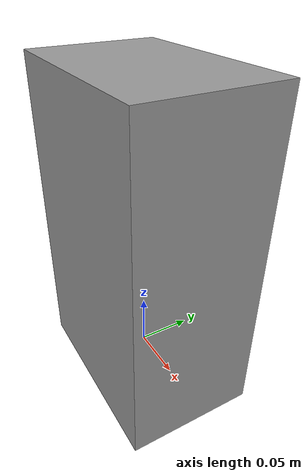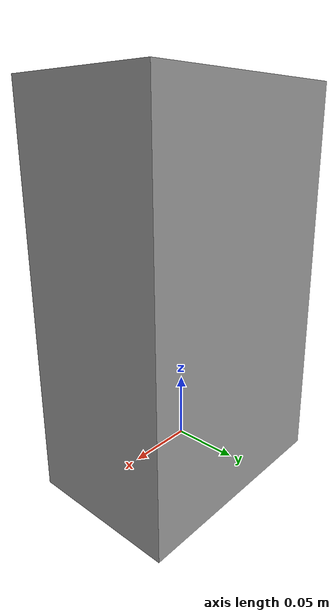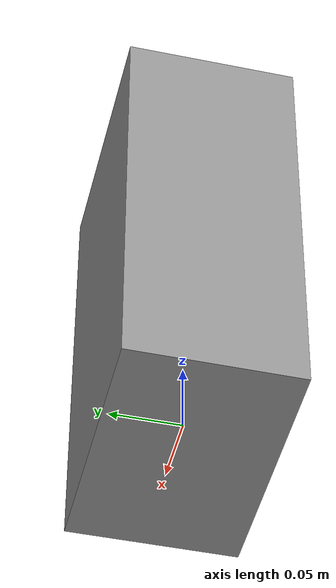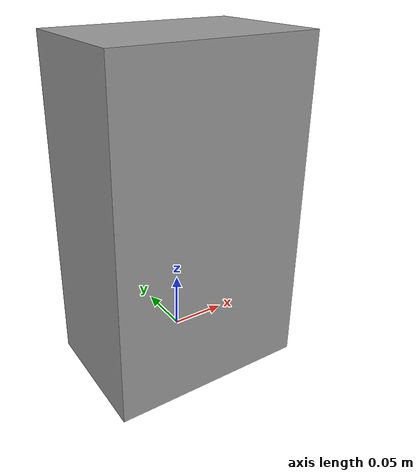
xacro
<?xml version="1.0"?>
<robot xmlns:xacro="http://www.ros.org/wiki/xacro">

  <!-- Placeholder geometry/inertia — see config/flex_inertials.yaml and
       docs/architecture/hardware_architecture.md (CAD-to-Sim Pipeline) -->
  <xacro:property name="base_x" value="0.18"/>
  <xacro:property name="base_y" value="0.12"/>
  <xacro:property name="base_z" value="0.30"/>
  <xacro:property name="base_mass" value="2.3"/>
  <xacro:property name="base_ground_clearance" value="0.122"/> <!-- wheel_radius + half wheel-axle drop, see flex_wheels.xacro -->

  <!-- base_footprint: standard ROS2 convention — ground-projected origin, no inertia -->
  <link name="base_footprint"/>

  <joint name="base_footprint_joint" type="fixed">
    <parent link="base_footprint"/>
    <child link="base_link"/>
    <origin xyz="0 0 ${base_ground_clearance}" rpy="0 0 0"/>
  </joint>

  <link name="base_link">
    <visual>
      <origin xyz="0 0 0" rpy="0 0 0"/>
      <geometry>
        <box size="${base_x} ${base_y} ${base_z}"/>
      </geometry>
      <material name="flex_chassis_grey"/>
    </visual>
    <collision>
      <origin xyz="0 0 0" rpy="0 0 0"/>
      <geometry>
        <box size="${base_x} ${base_y} ${base_z}"/>
      </geometry>
    </collision>
    <inertial>
      <origin xyz="0 0 0" rpy="0 0 0"/>
      <mass value="${base_mass}"/>
      <inertia ixx="0.02001" iyy="0.02346" izz="0.00897" ixy="0" ixz="0" iyz="0"/>
    </inertial>
  </link>

</robot>
